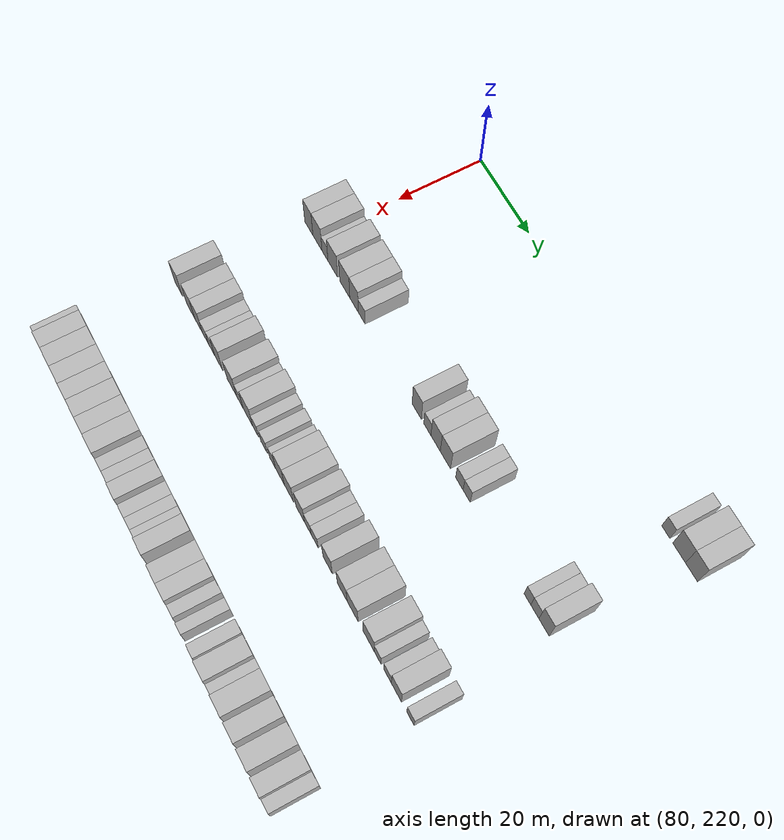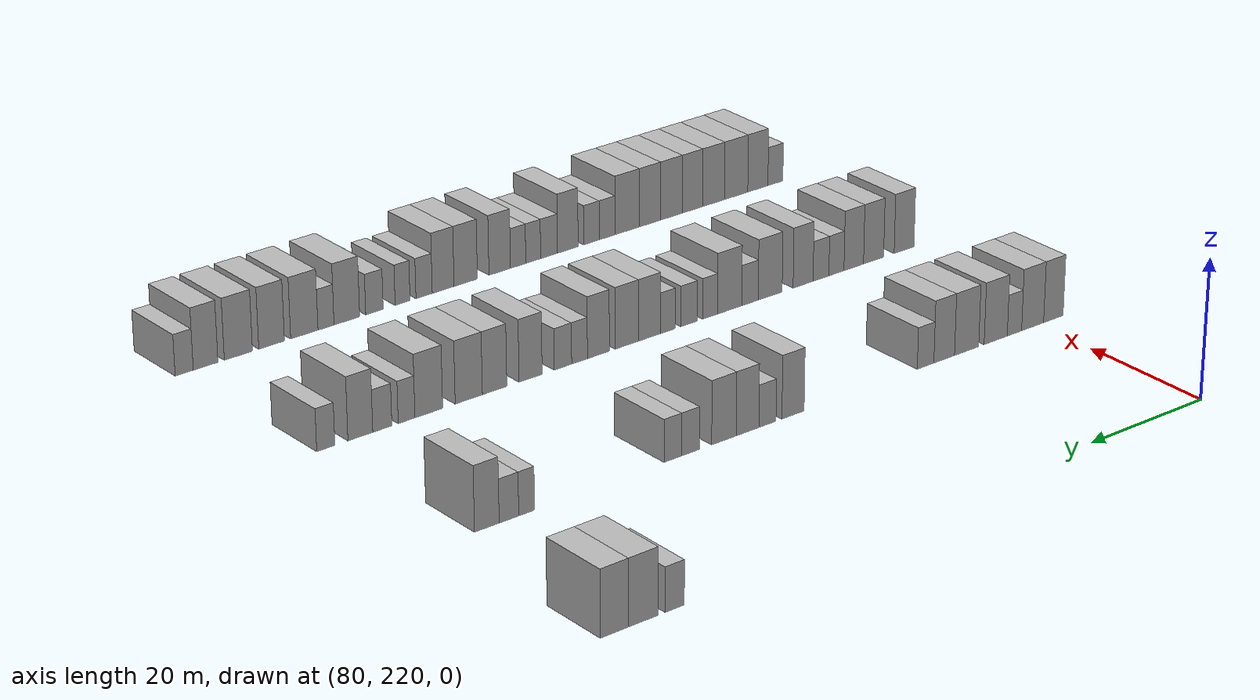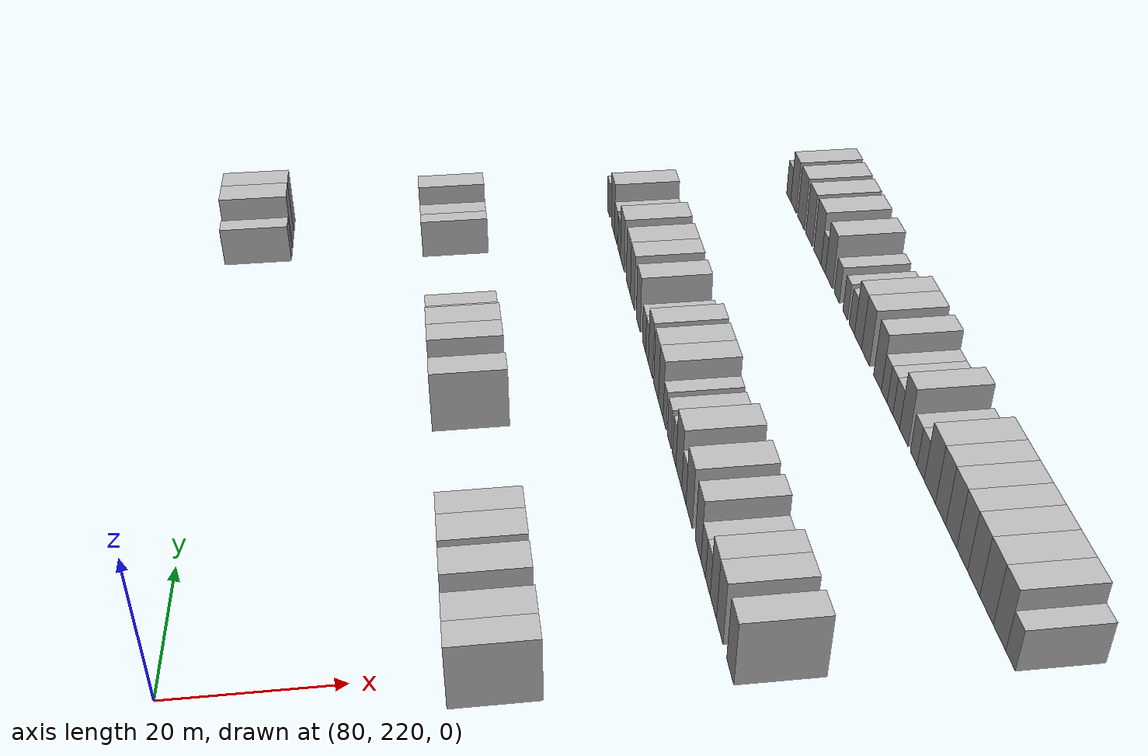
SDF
<sdf version="1.6">
 <world name="default">
  <model name="building_637">
   <static>1</static>
   <pose>85.0000 308.1836 0 0.000000 0.000000 0.000000</pose>
   <link name="link">
    <pose>0 0 3.00 0 0 0</pose>
    <collision name="collision"><geometry><box><size>10.0000 2.8824 6.0000</size></box></geometry></collision>
    <visual name="visual">
     <cast_shadows>0</cast_shadows>
     <geometry><box><size>10.0000 2.8824 6.0000</size></box></geometry>
     <material>
      <script>
       <uri>model://HANNAS_wall/materials/scripts</uri>
       <uri>model://HANNAS_wall/materials/textures</uri>
       <name>vrc/HANNAS_wall</name>
      </script>
     </material>
    </visual>
   </link>
  </model>
  <model name="building_638">
   <static>1</static>
   <pose>85.0000 312.8430 0 0.000000 0.000000 0.000000</pose>
   <link name="link">
    <pose>0 0 4.50 0 0 0</pose>
    <collision name="collision"><geometry><box><size>10.0000 4.4364 9.0000</size></box></geometry></collision>
    <visual name="visual">
     <cast_shadows>0</cast_shadows>
     <geometry><box><size>10.0000 4.4364 9.0000</size></box></geometry>
     <material>
      <script>
       <uri>model://HANNAS_wall/materials/scripts</uri>
       <uri>model://HANNAS_wall/materials/textures</uri>
       <name>vrc/HANNAS_wall</name>
      </script>
     </material>
    </visual>
   </link>
  </model>
  <model name="building_639">
   <static>1</static>
   <pose>85.0000 317.1447 0 0.000000 0.000000 0.000000</pose>
   <link name="link">
    <pose>0 0 4.50 0 0 0</pose>
    <collision name="collision"><geometry><box><size>10.0000 4.1670 9.0000</size></box></geometry></collision>
    <visual name="visual">
     <cast_shadows>0</cast_shadows>
     <geometry><box><size>10.0000 4.1670 9.0000</size></box></geometry>
     <material>
      <script>
       <uri>model://HANNAS_wall/materials/scripts</uri>
       <uri>model://HANNAS_wall/materials/textures</uri>
       <name>vrc/HANNAS_wall</name>
      </script>
     </material>
    </visual>
   </link>
  </model>
  <model name="building_849">
   <static>1</static>
   <pose>115.0000 217.1900 0 0.000000 0.000000 0.000000</pose>
   <link name="link">
    <pose>0 0 4.50 0 0 0</pose>
    <collision name="collision"><geometry><box><size>10.0000 3.6841 9.0000</size></box></geometry></collision>
    <visual name="visual">
     <cast_shadows>0</cast_shadows>
     <geometry><box><size>10.0000 3.6841 9.0000</size></box></geometry>
     <material>
      <script>
       <uri>model://HANNAS_wall/materials/scripts</uri>
       <uri>model://HANNAS_wall/materials/textures</uri>
       <name>vrc/HANNAS_wall</name>
      </script>
     </material>
    </visual>
   </link>
  </model>
  <model name="building_850">
   <static>1</static>
   <pose>115.0000 221.0914 0 0.000000 0.000000 0.000000</pose>
   <link name="link">
    <pose>0 0 4.50 0 0 0</pose>
    <collision name="collision"><geometry><box><size>10.0000 4.1188 9.0000</size></box></geometry></collision>
    <visual name="visual">
     <cast_shadows>0</cast_shadows>
     <geometry><box><size>10.0000 4.1188 9.0000</size></box></geometry>
     <material>
      <script>
       <uri>model://HANNAS_wall/materials/scripts</uri>
       <uri>model://HANNAS_wall/materials/textures</uri>
       <name>vrc/HANNAS_wall</name>
      </script>
     </material>
    </visual>
   </link>
  </model>
  <model name="building_851">
   <static>1</static>
   <pose>115.0000 224.4838 0 0.000000 0.000000 0.000000</pose>
   <link name="link">
    <pose>0 0 3.00 0 0 0</pose>
    <collision name="collision"><geometry><box><size>10.0000 2.6661 6.0000</size></box></geometry></collision>
    <visual name="visual">
     <cast_shadows>0</cast_shadows>
     <geometry><box><size>10.0000 2.6661 6.0000</size></box></geometry>
     <material>
      <script>
       <uri>model://HANNAS_wall/materials/scripts</uri>
       <uri>model://HANNAS_wall/materials/textures</uri>
       <name>vrc/HANNAS_wall</name>
      </script>
     </material>
    </visual>
   </link>
  </model>
  <model name="building_852">
   <static>1</static>
   <pose>115.0000 227.9527 0 0.000000 0.000000 0.000000</pose>
   <link name="link">
    <pose>0 0 4.50 0 0 0</pose>
    <collision name="collision"><geometry><box><size>10.0000 4.2716 9.0000</size></box></geometry></collision>
    <visual name="visual">
     <cast_shadows>0</cast_shadows>
     <geometry><box><size>10.0000 4.2716 9.0000</size></box></geometry>
     <material>
      <script>
       <uri>model://HANNAS_wall/materials/scripts</uri>
       <uri>model://HANNAS_wall/materials/textures</uri>
       <name>vrc/HANNAS_wall</name>
      </script>
     </material>
    </visual>
   </link>
  </model>
  <model name="building_853">
   <static>1</static>
   <pose>115.0000 233.2897 0 0.000000 0.000000 0.000000</pose>
   <link name="link">
    <pose>0 0 4.50 0 0 0</pose>
    <collision name="collision"><geometry><box><size>10.0000 4.4025 9.0000</size></box></geometry></collision>
    <visual name="visual">
     <cast_shadows>0</cast_shadows>
     <geometry><box><size>10.0000 4.4025 9.0000</size></box></geometry>
     <material>
      <script>
       <uri>model://HANNAS_wall/materials/scripts</uri>
       <uri>model://HANNAS_wall/materials/textures</uri>
       <name>vrc/HANNAS_wall</name>
      </script>
     </material>
    </visual>
   </link>
  </model>
  <model name="building_854">
   <static>1</static>
   <pose>115.0000 237.3586 0 0.000000 0.000000 0.000000</pose>
   <link name="link">
    <pose>0 0 4.50 0 0 0</pose>
    <collision name="collision"><geometry><box><size>10.0000 3.7352 9.0000</size></box></geometry></collision>
    <visual name="visual">
     <cast_shadows>0</cast_shadows>
     <geometry><box><size>10.0000 3.7352 9.0000</size></box></geometry>
     <material>
      <script>
       <uri>model://HANNAS_wall/materials/scripts</uri>
       <uri>model://HANNAS_wall/materials/textures</uri>
       <name>vrc/HANNAS_wall</name>
      </script>
     </material>
    </visual>
   </link>
  </model>
  <model name="building_855">
   <static>1</static>
   <pose>115.0000 240.7136 0 0.000000 0.000000 0.000000</pose>
   <link name="link">
    <pose>0 0 3.00 0 0 0</pose>
    <collision name="collision"><geometry><box><size>10.0000 2.9749 6.0000</size></box></geometry></collision>
    <visual name="visual">
     <cast_shadows>0</cast_shadows>
     <geometry><box><size>10.0000 2.9749 6.0000</size></box></geometry>
     <material>
      <script>
       <uri>model://HANNAS_wall/materials/scripts</uri>
       <uri>model://HANNAS_wall/materials/textures</uri>
       <name>vrc/HANNAS_wall</name>
      </script>
     </material>
    </visual>
   </link>
  </model>
  <model name="building_856">
   <static>1</static>
   <pose>115.0000 263.8609 0 0.000000 0.000000 0.000000</pose>
   <link name="link">
    <pose>0 0 4.50 0 0 0</pose>
    <collision name="collision"><geometry><box><size>10.0000 3.7732 9.0000</size></box></geometry></collision>
    <visual name="visual">
     <cast_shadows>0</cast_shadows>
     <geometry><box><size>10.0000 3.7732 9.0000</size></box></geometry>
     <material>
      <script>
       <uri>model://HANNAS_wall/materials/scripts</uri>
       <uri>model://HANNAS_wall/materials/textures</uri>
       <name>vrc/HANNAS_wall</name>
      </script>
     </material>
    </visual>
   </link>
  </model>
  <model name="building_857">
   <static>1</static>
   <pose>115.0000 268.1906 0 0.000000 0.000000 0.000000</pose>
   <link name="link">
    <pose>0 0 3.00 0 0 0</pose>
    <collision name="collision"><geometry><box><size>10.0000 2.8861 6.0000</size></box></geometry></collision>
    <visual name="visual">
     <cast_shadows>0</cast_shadows>
     <geometry><box><size>10.0000 2.8861 6.0000</size></box></geometry>
     <material>
      <script>
       <uri>model://HANNAS_wall/materials/scripts</uri>
       <uri>model://HANNAS_wall/materials/textures</uri>
       <name>vrc/HANNAS_wall</name>
      </script>
     </material>
    </visual>
   </link>
  </model>
  <model name="building_858">
   <static>1</static>
   <pose>115.0000 271.5165 0 0.000000 0.000000 0.000000</pose>
   <link name="link">
    <pose>0 0 4.50 0 0 0</pose>
    <collision name="collision"><geometry><box><size>10.0000 3.7658 9.0000</size></box></geometry></collision>
    <visual name="visual">
     <cast_shadows>0</cast_shadows>
     <geometry><box><size>10.0000 3.7658 9.0000</size></box></geometry>
     <material>
      <script>
       <uri>model://HANNAS_wall/materials/scripts</uri>
       <uri>model://HANNAS_wall/materials/textures</uri>
       <name>vrc/HANNAS_wall</name>
      </script>
     </material>
    </visual>
   </link>
  </model>
  <model name="building_859">
   <static>1</static>
   <pose>115.0000 275.4353 0 0.000000 0.000000 0.000000</pose>
   <link name="link">
    <pose>0 0 4.50 0 0 0</pose>
    <collision name="collision"><geometry><box><size>10.0000 4.0717 9.0000</size></box></geometry></collision>
    <visual name="visual">
     <cast_shadows>0</cast_shadows>
     <geometry><box><size>10.0000 4.0717 9.0000</size></box></geometry>
     <material>
      <script>
       <uri>model://HANNAS_wall/materials/scripts</uri>
       <uri>model://HANNAS_wall/materials/textures</uri>
       <name>vrc/HANNAS_wall</name>
      </script>
     </material>
    </visual>
   </link>
  </model>
  <model name="building_860">
   <static>1</static>
   <pose>115.0000 280.9340 0 0.000000 0.000000 0.000000</pose>
   <link name="link">
    <pose>0 0 3.00 0 0 0</pose>
    <collision name="collision"><geometry><box><size>10.0000 2.9256 6.0000</size></box></geometry></collision>
    <visual name="visual">
     <cast_shadows>0</cast_shadows>
     <geometry><box><size>10.0000 2.9256 6.0000</size></box></geometry>
     <material>
      <script>
       <uri>model://HANNAS_wall/materials/scripts</uri>
       <uri>model://HANNAS_wall/materials/textures</uri>
       <name>vrc/HANNAS_wall</name>
      </script>
     </material>
    </visual>
   </link>
  </model>
  <model name="building_861">
   <static>1</static>
   <pose>115.0000 283.8155 0 0.000000 0.000000 0.000000</pose>
   <link name="link">
    <pose>0 0 3.00 0 0 0</pose>
    <collision name="collision"><geometry><box><size>10.0000 2.8373 6.0000</size></box></geometry></collision>
    <visual name="visual">
     <cast_shadows>0</cast_shadows>
     <geometry><box><size>10.0000 2.8373 6.0000</size></box></geometry>
     <material>
      <script>
       <uri>model://HANNAS_wall/materials/scripts</uri>
       <uri>model://HANNAS_wall/materials/textures</uri>
       <name>vrc/HANNAS_wall</name>
      </script>
     </material>
    </visual>
   </link>
  </model>
  <model name="building_862">
   <static>1</static>
   <pose>115.0000 306.8834 0 0.000000 0.000000 0.000000</pose>
   <link name="link">
    <pose>0 0 3.00 0 0 0</pose>
    <collision name="collision"><geometry><box><size>10.0000 2.4329 6.0000</size></box></geometry></collision>
    <visual name="visual">
     <cast_shadows>0</cast_shadows>
     <geometry><box><size>10.0000 2.4329 6.0000</size></box></geometry>
     <material>
      <script>
       <uri>model://HANNAS_wall/materials/scripts</uri>
       <uri>model://HANNAS_wall/materials/textures</uri>
       <name>vrc/HANNAS_wall</name>
      </script>
     </material>
    </visual>
   </link>
  </model>
  <model name="building_863">
   <static>1</static>
   <pose>115.0000 309.5892 0 0.000000 0.000000 0.000000</pose>
   <link name="link">
    <pose>0 0 3.00 0 0 0</pose>
    <collision name="collision"><geometry><box><size>10.0000 2.9786 6.0000</size></box></geometry></collision>
    <visual name="visual">
     <cast_shadows>0</cast_shadows>
     <geometry><box><size>10.0000 2.9786 6.0000</size></box></geometry>
     <material>
      <script>
       <uri>model://HANNAS_wall/materials/scripts</uri>
       <uri>model://HANNAS_wall/materials/textures</uri>
       <name>vrc/HANNAS_wall</name>
      </script>
     </material>
    </visual>
   </link>
  </model>
  <model name="building_864">
   <static>1</static>
   <pose>115.0000 312.9439 0 0.000000 0.000000 0.000000</pose>
   <link name="link">
    <pose>0 0 4.50 0 0 0</pose>
    <collision name="collision"><geometry><box><size>10.0000 3.7308 9.0000</size></box></geometry></collision>
    <visual name="visual">
     <cast_shadows>0</cast_shadows>
     <geometry><box><size>10.0000 3.7308 9.0000</size></box></geometry>
     <material>
      <script>
       <uri>model://HANNAS_wall/materials/scripts</uri>
       <uri>model://HANNAS_wall/materials/textures</uri>
       <name>vrc/HANNAS_wall</name>
      </script>
     </material>
    </visual>
   </link>
  </model>
  <model name="building_1064">
   <static>1</static>
   <pose>145.0000 217.0241 0 0.000000 0.000000 0.000000</pose>
   <link name="link">
    <pose>0 0 4.50 0 0 0</pose>
    <collision name="collision"><geometry><box><size>10.0000 3.7813 9.0000</size></box></geometry></collision>
    <visual name="visual">
     <cast_shadows>0</cast_shadows>
     <geometry><box><size>10.0000 3.7813 9.0000</size></box></geometry>
     <material>
      <script>
       <uri>model://HANNAS_wall/materials/scripts</uri>
       <uri>model://HANNAS_wall/materials/textures</uri>
       <name>vrc/HANNAS_wall</name>
      </script>
     </material>
    </visual>
   </link>
  </model>
  <model name="building_1065">
   <static>1</static>
   <pose>145.0000 222.8066 0 0.000000 0.000000 0.000000</pose>
   <link name="link">
    <pose>0 0 4.50 0 0 0</pose>
    <collision name="collision"><geometry><box><size>10.0000 3.7836 9.0000</size></box></geometry></collision>
    <visual name="visual">
     <cast_shadows>0</cast_shadows>
     <geometry><box><size>10.0000 3.7836 9.0000</size></box></geometry>
     <material>
      <script>
       <uri>model://HANNAS_wall/materials/scripts</uri>
       <uri>model://HANNAS_wall/materials/textures</uri>
       <name>vrc/HANNAS_wall</name>
      </script>
     </material>
    </visual>
   </link>
  </model>
  <model name="building_1066">
   <static>1</static>
   <pose>145.0000 226.5248 0 0.000000 0.000000 0.000000</pose>
   <link name="link">
    <pose>0 0 4.50 0 0 0</pose>
    <collision name="collision"><geometry><box><size>10.0000 3.6529 9.0000</size></box></geometry></collision>
    <visual name="visual">
     <cast_shadows>0</cast_shadows>
     <geometry><box><size>10.0000 3.6529 9.0000</size></box></geometry>
     <material>
      <script>
       <uri>model://HANNAS_wall/materials/scripts</uri>
       <uri>model://HANNAS_wall/materials/textures</uri>
       <name>vrc/HANNAS_wall</name>
      </script>
     </material>
    </visual>
   </link>
  </model>
  <model name="building_1067">
   <static>1</static>
   <pose>145.0000 229.7549 0 0.000000 0.000000 0.000000</pose>
   <link name="link">
    <pose>0 0 3.00 0 0 0</pose>
    <collision name="collision"><geometry><box><size>10.0000 2.8072 6.0000</size></box></geometry></collision>
    <visual name="visual">
     <cast_shadows>0</cast_shadows>
     <geometry><box><size>10.0000 2.8072 6.0000</size></box></geometry>
     <material>
      <script>
       <uri>model://HANNAS_wall/materials/scripts</uri>
       <uri>model://HANNAS_wall/materials/textures</uri>
       <name>vrc/HANNAS_wall</name>
      </script>
     </material>
    </visual>
   </link>
  </model>
  <model name="building_1068">
   <static>1</static>
   <pose>145.0000 232.6130 0 0.000000 0.000000 0.000000</pose>
   <link name="link">
    <pose>0 0 3.00 0 0 0</pose>
    <collision name="collision"><geometry><box><size>10.0000 2.9091 6.0000</size></box></geometry></collision>
    <visual name="visual">
     <cast_shadows>0</cast_shadows>
     <geometry><box><size>10.0000 2.9091 6.0000</size></box></geometry>
     <material>
      <script>
       <uri>model://HANNAS_wall/materials/scripts</uri>
       <uri>model://HANNAS_wall/materials/textures</uri>
       <name>vrc/HANNAS_wall</name>
      </script>
     </material>
    </visual>
   </link>
  </model>
  <model name="building_1069">
   <static>1</static>
   <pose>145.0000 235.8982 0 0.000000 0.000000 0.000000</pose>
   <link name="link">
    <pose>0 0 4.50 0 0 0</pose>
    <collision name="collision"><geometry><box><size>10.0000 3.6612 9.0000</size></box></geometry></collision>
    <visual name="visual">
     <cast_shadows>0</cast_shadows>
     <geometry><box><size>10.0000 3.6612 9.0000</size></box></geometry>
     <material>
      <script>
       <uri>model://HANNAS_wall/materials/scripts</uri>
       <uri>model://HANNAS_wall/materials/textures</uri>
       <name>vrc/HANNAS_wall</name>
      </script>
     </material>
    </visual>
   </link>
  </model>
  <model name="building_1070">
   <static>1</static>
   <pose>145.0000 241.8910 0 0.000000 0.000000 0.000000</pose>
   <link name="link">
    <pose>0 0 4.50 0 0 0</pose>
    <collision name="collision"><geometry><box><size>10.0000 4.3245 9.0000</size></box></geometry></collision>
    <visual name="visual">
     <cast_shadows>0</cast_shadows>
     <geometry><box><size>10.0000 4.3245 9.0000</size></box></geometry>
     <material>
      <script>
       <uri>model://HANNAS_wall/materials/scripts</uri>
       <uri>model://HANNAS_wall/materials/textures</uri>
       <name>vrc/HANNAS_wall</name>
      </script>
     </material>
    </visual>
   </link>
  </model>
  <model name="building_1071">
   <static>1</static>
   <pose>145.0000 245.5260 0 0.000000 0.000000 0.000000</pose>
   <link name="link">
    <pose>0 0 3.00 0 0 0</pose>
    <collision name="collision"><geometry><box><size>10.0000 2.9454 6.0000</size></box></geometry></collision>
    <visual name="visual">
     <cast_shadows>0</cast_shadows>
     <geometry><box><size>10.0000 2.9454 6.0000</size></box></geometry>
     <material>
      <script>
       <uri>model://HANNAS_wall/materials/scripts</uri>
       <uri>model://HANNAS_wall/materials/textures</uri>
       <name>vrc/HANNAS_wall</name>
      </script>
     </material>
    </visual>
   </link>
  </model>
  <model name="building_1072">
   <static>1</static>
   <pose>145.0000 249.1521 0 0.000000 0.000000 0.000000</pose>
   <link name="link">
    <pose>0 0 4.50 0 0 0</pose>
    <collision name="collision"><geometry><box><size>10.0000 4.3068 9.0000</size></box></geometry></collision>
    <visual name="visual">
     <cast_shadows>0</cast_shadows>
     <geometry><box><size>10.0000 4.3068 9.0000</size></box></geometry>
     <material>
      <script>
       <uri>model://HANNAS_wall/materials/scripts</uri>
       <uri>model://HANNAS_wall/materials/textures</uri>
       <name>vrc/HANNAS_wall</name>
      </script>
     </material>
    </visual>
   </link>
  </model>
  <model name="building_1073">
   <static>1</static>
   <pose>145.0000 252.6098 0 0.000000 0.000000 0.000000</pose>
   <link name="link">
    <pose>0 0 3.00 0 0 0</pose>
    <collision name="collision"><geometry><box><size>10.0000 2.6086 6.0000</size></box></geometry></collision>
    <visual name="visual">
     <cast_shadows>0</cast_shadows>
     <geometry><box><size>10.0000 2.6086 6.0000</size></box></geometry>
     <material>
      <script>
       <uri>model://HANNAS_wall/materials/scripts</uri>
       <uri>model://HANNAS_wall/materials/textures</uri>
       <name>vrc/HANNAS_wall</name>
      </script>
     </material>
    </visual>
   </link>
  </model>
  <model name="building_1074">
   <static>1</static>
   <pose>145.0000 256.3312 0 0.000000 0.000000 0.000000</pose>
   <link name="link">
    <pose>0 0 3.00 0 0 0</pose>
    <collision name="collision"><geometry><box><size>10.0000 2.8342 6.0000</size></box></geometry></collision>
    <visual name="visual">
     <cast_shadows>0</cast_shadows>
     <geometry><box><size>10.0000 2.8342 6.0000</size></box></geometry>
     <material>
      <script>
       <uri>model://HANNAS_wall/materials/scripts</uri>
       <uri>model://HANNAS_wall/materials/textures</uri>
       <name>vrc/HANNAS_wall</name>
      </script>
     </material>
    </visual>
   </link>
  </model>
  <model name="building_1075">
   <static>1</static>
   <pose>145.0000 259.9956 0 0.000000 0.000000 0.000000</pose>
   <link name="link">
    <pose>0 0 3.00 0 0 0</pose>
    <collision name="collision"><geometry><box><size>10.0000 2.4946 6.0000</size></box></geometry></collision>
    <visual name="visual">
     <cast_shadows>0</cast_shadows>
     <geometry><box><size>10.0000 2.4946 6.0000</size></box></geometry>
     <material>
      <script>
       <uri>model://HANNAS_wall/materials/scripts</uri>
       <uri>model://HANNAS_wall/materials/textures</uri>
       <name>vrc/HANNAS_wall</name>
      </script>
     </material>
    </visual>
   </link>
  </model>
  <model name="building_1076">
   <static>1</static>
   <pose>145.0000 263.1510 0 0.000000 0.000000 0.000000</pose>
   <link name="link">
    <pose>0 0 4.50 0 0 0</pose>
    <collision name="collision"><geometry><box><size>10.0000 3.8164 9.0000</size></box></geometry></collision>
    <visual name="visual">
     <cast_shadows>0</cast_shadows>
     <geometry><box><size>10.0000 3.8164 9.0000</size></box></geometry>
     <material>
      <script>
       <uri>model://HANNAS_wall/materials/scripts</uri>
       <uri>model://HANNAS_wall/materials/textures</uri>
       <name>vrc/HANNAS_wall</name>
      </script>
     </material>
    </visual>
   </link>
  </model>
  <model name="building_1077">
   <static>1</static>
   <pose>145.0000 267.0627 0 0.000000 0.000000 0.000000</pose>
   <link name="link">
    <pose>0 0 4.50 0 0 0</pose>
    <collision name="collision"><geometry><box><size>10.0000 4.0069 9.0000</size></box></geometry></collision>
    <visual name="visual">
     <cast_shadows>0</cast_shadows>
     <geometry><box><size>10.0000 4.0069 9.0000</size></box></geometry>
     <material>
      <script>
       <uri>model://HANNAS_wall/materials/scripts</uri>
       <uri>model://HANNAS_wall/materials/textures</uri>
       <name>vrc/HANNAS_wall</name>
      </script>
     </material>
    </visual>
   </link>
  </model>
  <model name="building_1078">
   <static>1</static>
   <pose>145.0000 271.9260 0 0.000000 0.000000 0.000000</pose>
   <link name="link">
    <pose>0 0 4.50 0 0 0</pose>
    <collision name="collision"><geometry><box><size>10.0000 3.7196 9.0000</size></box></geometry></collision>
    <visual name="visual">
     <cast_shadows>0</cast_shadows>
     <geometry><box><size>10.0000 3.7196 9.0000</size></box></geometry>
     <material>
      <script>
       <uri>model://HANNAS_wall/materials/scripts</uri>
       <uri>model://HANNAS_wall/materials/textures</uri>
       <name>vrc/HANNAS_wall</name>
      </script>
     </material>
    </visual>
   </link>
  </model>
  <model name="building_1079">
   <static>1</static>
   <pose>145.0000 275.1103 0 0.000000 0.000000 0.000000</pose>
   <link name="link">
    <pose>0 0 3.00 0 0 0</pose>
    <collision name="collision"><geometry><box><size>10.0000 2.6491 6.0000</size></box></geometry></collision>
    <visual name="visual">
     <cast_shadows>0</cast_shadows>
     <geometry><box><size>10.0000 2.6491 6.0000</size></box></geometry>
     <material>
      <script>
       <uri>model://HANNAS_wall/materials/scripts</uri>
       <uri>model://HANNAS_wall/materials/textures</uri>
       <name>vrc/HANNAS_wall</name>
      </script>
     </material>
    </visual>
   </link>
  </model>
  <model name="building_1080">
   <static>1</static>
   <pose>145.0000 277.8964 0 0.000000 0.000000 0.000000</pose>
   <link name="link">
    <pose>0 0 3.00 0 0 0</pose>
    <collision name="collision"><geometry><box><size>10.0000 2.9231 6.0000</size></box></geometry></collision>
    <visual name="visual">
     <cast_shadows>0</cast_shadows>
     <geometry><box><size>10.0000 2.9231 6.0000</size></box></geometry>
     <material>
      <script>
       <uri>model://HANNAS_wall/materials/scripts</uri>
       <uri>model://HANNAS_wall/materials/textures</uri>
       <name>vrc/HANNAS_wall</name>
      </script>
     </material>
    </visual>
   </link>
  </model>
  <model name="building_1081">
   <static>1</static>
   <pose>145.0000 283.2603 0 0.000000 0.000000 0.000000</pose>
   <link name="link">
    <pose>0 0 4.50 0 0 0</pose>
    <collision name="collision"><geometry><box><size>10.0000 3.8047 9.0000</size></box></geometry></collision>
    <visual name="visual">
     <cast_shadows>0</cast_shadows>
     <geometry><box><size>10.0000 3.8047 9.0000</size></box></geometry>
     <material>
      <script>
       <uri>model://HANNAS_wall/materials/scripts</uri>
       <uri>model://HANNAS_wall/materials/textures</uri>
       <name>vrc/HANNAS_wall</name>
      </script>
     </material>
    </visual>
   </link>
  </model>
  <model name="building_1082">
   <static>1</static>
   <pose>145.0000 289.1527 0 0.000000 0.000000 0.000000</pose>
   <link name="link">
    <pose>0 0 4.50 0 0 0</pose>
    <collision name="collision"><geometry><box><size>10.0000 3.9801 9.0000</size></box></geometry></collision>
    <visual name="visual">
     <cast_shadows>0</cast_shadows>
     <geometry><box><size>10.0000 3.9801 9.0000</size></box></geometry>
     <material>
      <script>
       <uri>model://HANNAS_wall/materials/scripts</uri>
       <uri>model://HANNAS_wall/materials/textures</uri>
       <name>vrc/HANNAS_wall</name>
      </script>
     </material>
    </visual>
   </link>
  </model>
  <model name="building_1083">
   <static>1</static>
   <pose>145.0000 293.3345 0 0.000000 0.000000 0.000000</pose>
   <link name="link">
    <pose>0 0 4.50 0 0 0</pose>
    <collision name="collision"><geometry><box><size>10.0000 4.3834 9.0000</size></box></geometry></collision>
    <visual name="visual">
     <cast_shadows>0</cast_shadows>
     <geometry><box><size>10.0000 4.3834 9.0000</size></box></geometry>
     <material>
      <script>
       <uri>model://HANNAS_wall/materials/scripts</uri>
       <uri>model://HANNAS_wall/materials/textures</uri>
       <name>vrc/HANNAS_wall</name>
      </script>
     </material>
    </visual>
   </link>
  </model>
  <model name="building_1084">
   <static>1</static>
   <pose>145.0000 299.7274 0 0.000000 0.000000 0.000000</pose>
   <link name="link">
    <pose>0 0 4.50 0 0 0</pose>
    <collision name="collision"><geometry><box><size>10.0000 4.4024 9.0000</size></box></geometry></collision>
    <visual name="visual">
     <cast_shadows>0</cast_shadows>
     <geometry><box><size>10.0000 4.4024 9.0000</size></box></geometry>
     <material>
      <script>
       <uri>model://HANNAS_wall/materials/scripts</uri>
       <uri>model://HANNAS_wall/materials/textures</uri>
       <name>vrc/HANNAS_wall</name>
      </script>
     </material>
    </visual>
   </link>
  </model>
  <model name="building_1085">
   <static>1</static>
   <pose>145.0000 303.2469 0 0.000000 0.000000 0.000000</pose>
   <link name="link">
    <pose>0 0 3.00 0 0 0</pose>
    <collision name="collision"><geometry><box><size>10.0000 2.6367 6.0000</size></box></geometry></collision>
    <visual name="visual">
     <cast_shadows>0</cast_shadows>
     <geometry><box><size>10.0000 2.6367 6.0000</size></box></geometry>
     <material>
      <script>
       <uri>model://HANNAS_wall/materials/scripts</uri>
       <uri>model://HANNAS_wall/materials/textures</uri>
       <name>vrc/HANNAS_wall</name>
      </script>
     </material>
    </visual>
   </link>
  </model>
  <model name="building_1086">
   <static>1</static>
   <pose>145.0000 307.0524 0 0.000000 0.000000 0.000000</pose>
   <link name="link">
    <pose>0 0 3.00 0 0 0</pose>
    <collision name="collision"><geometry><box><size>10.0000 2.9744 6.0000</size></box></geometry></collision>
    <visual name="visual">
     <cast_shadows>0</cast_shadows>
     <geometry><box><size>10.0000 2.9744 6.0000</size></box></geometry>
     <material>
      <script>
       <uri>model://HANNAS_wall/materials/scripts</uri>
       <uri>model://HANNAS_wall/materials/textures</uri>
       <name>vrc/HANNAS_wall</name>
      </script>
     </material>
    </visual>
   </link>
  </model>
  <model name="building_1087">
   <static>1</static>
   <pose>145.0000 310.4643 0 0.000000 0.000000 0.000000</pose>
   <link name="link">
    <pose>0 0 4.50 0 0 0</pose>
    <collision name="collision"><geometry><box><size>10.0000 3.8494 9.0000</size></box></geometry></collision>
    <visual name="visual">
     <cast_shadows>0</cast_shadows>
     <geometry><box><size>10.0000 3.8494 9.0000</size></box></geometry>
     <material>
      <script>
       <uri>model://HANNAS_wall/materials/scripts</uri>
       <uri>model://HANNAS_wall/materials/textures</uri>
       <name>vrc/HANNAS_wall</name>
      </script>
     </material>
    </visual>
   </link>
  </model>
  <model name="building_1088">
   <static>1</static>
   <pose>145.0000 315.7819 0 0.000000 0.000000 0.000000</pose>
   <link name="link">
    <pose>0 0 3.00 0 0 0</pose>
    <collision name="collision"><geometry><box><size>10.0000 2.7859 6.0000</size></box></geometry></collision>
    <visual name="visual">
     <cast_shadows>0</cast_shadows>
     <geometry><box><size>10.0000 2.7859 6.0000</size></box></geometry>
     <material>
      <script>
       <uri>model://HANNAS_wall/materials/scripts</uri>
       <uri>model://HANNAS_wall/materials/textures</uri>
       <name>vrc/HANNAS_wall</name>
      </script>
     </material>
    </visual>
   </link>
  </model>
  <model name="building_1298">
   <static>1</static>
   <pose>175.0000 215.0484 0 0.000000 0.000000 0.000000</pose>
   <link name="link">
    <pose>0 0 3.00 0 0 0</pose>
    <collision name="collision"><geometry><box><size>10.0000 2.8907 6.0000</size></box></geometry></collision>
    <visual name="visual">
     <cast_shadows>0</cast_shadows>
     <geometry><box><size>10.0000 2.8907 6.0000</size></box></geometry>
     <material>
      <script>
       <uri>model://HANNAS_wall/materials/scripts</uri>
       <uri>model://HANNAS_wall/materials/textures</uri>
       <name>vrc/HANNAS_wall</name>
      </script>
     </material>
    </visual>
   </link>
  </model>
  <model name="building_1299">
   <static>1</static>
   <pose>175.0000 218.4317 0 0.000000 0.000000 0.000000</pose>
   <link name="link">
    <pose>0 0 4.50 0 0 0</pose>
    <collision name="collision"><geometry><box><size>10.0000 3.8757 9.0000</size></box></geometry></collision>
    <visual name="visual">
     <cast_shadows>0</cast_shadows>
     <geometry><box><size>10.0000 3.8757 9.0000</size></box></geometry>
     <material>
      <script>
       <uri>model://HANNAS_wall/materials/scripts</uri>
       <uri>model://HANNAS_wall/materials/textures</uri>
       <name>vrc/HANNAS_wall</name>
      </script>
     </material>
    </visual>
   </link>
  </model>
  <model name="building_1300">
   <static>1</static>
   <pose>175.0000 222.5803 0 0.000000 0.000000 0.000000</pose>
   <link name="link">
    <pose>0 0 4.50 0 0 0</pose>
    <collision name="collision"><geometry><box><size>10.0000 4.4216 9.0000</size></box></geometry></collision>
    <visual name="visual">
     <cast_shadows>0</cast_shadows>
     <geometry><box><size>10.0000 4.4216 9.0000</size></box></geometry>
     <material>
      <script>
       <uri>model://HANNAS_wall/materials/scripts</uri>
       <uri>model://HANNAS_wall/materials/textures</uri>
       <name>vrc/HANNAS_wall</name>
      </script>
     </material>
    </visual>
   </link>
  </model>
  <model name="building_1301">
   <static>1</static>
   <pose>175.0000 226.8608 0 0.000000 0.000000 0.000000</pose>
   <link name="link">
    <pose>0 0 4.50 0 0 0</pose>
    <collision name="collision"><geometry><box><size>10.0000 4.1394 9.0000</size></box></geometry></collision>
    <visual name="visual">
     <cast_shadows>0</cast_shadows>
     <geometry><box><size>10.0000 4.1394 9.0000</size></box></geometry>
     <material>
      <script>
       <uri>model://HANNAS_wall/materials/scripts</uri>
       <uri>model://HANNAS_wall/materials/textures</uri>
       <name>vrc/HANNAS_wall</name>
      </script>
     </material>
    </visual>
   </link>
  </model>
  <model name="building_1302">
   <static>1</static>
   <pose>175.0000 230.8344 0 0.000000 0.000000 0.000000</pose>
   <link name="link">
    <pose>0 0 4.50 0 0 0</pose>
    <collision name="collision"><geometry><box><size>10.0000 3.8077 9.0000</size></box></geometry></collision>
    <visual name="visual">
     <cast_shadows>0</cast_shadows>
     <geometry><box><size>10.0000 3.8077 9.0000</size></box></geometry>
     <material>
      <script>
       <uri>model://HANNAS_wall/materials/scripts</uri>
       <uri>model://HANNAS_wall/materials/textures</uri>
       <name>vrc/HANNAS_wall</name>
      </script>
     </material>
    </visual>
   </link>
  </model>
  <model name="building_1303">
   <static>1</static>
   <pose>175.0000 234.7618 0 0.000000 0.000000 0.000000</pose>
   <link name="link">
    <pose>0 0 4.50 0 0 0</pose>
    <collision name="collision"><geometry><box><size>10.0000 4.0471 9.0000</size></box></geometry></collision>
    <visual name="visual">
     <cast_shadows>0</cast_shadows>
     <geometry><box><size>10.0000 4.0471 9.0000</size></box></geometry>
     <material>
      <script>
       <uri>model://HANNAS_wall/materials/scripts</uri>
       <uri>model://HANNAS_wall/materials/textures</uri>
       <name>vrc/HANNAS_wall</name>
      </script>
     </material>
    </visual>
   </link>
  </model>
  <model name="building_1304">
   <static>1</static>
   <pose>175.0000 238.7296 0 0.000000 0.000000 0.000000</pose>
   <link name="link">
    <pose>0 0 4.50 0 0 0</pose>
    <collision name="collision"><geometry><box><size>10.0000 3.8886 9.0000</size></box></geometry></collision>
    <visual name="visual">
     <cast_shadows>0</cast_shadows>
     <geometry><box><size>10.0000 3.8886 9.0000</size></box></geometry>
     <material>
      <script>
       <uri>model://HANNAS_wall/materials/scripts</uri>
       <uri>model://HANNAS_wall/materials/textures</uri>
       <name>vrc/HANNAS_wall</name>
      </script>
     </material>
    </visual>
   </link>
  </model>
  <model name="building_1305">
   <static>1</static>
   <pose>175.0000 242.8872 0 0.000000 0.000000 0.000000</pose>
   <link name="link">
    <pose>0 0 4.50 0 0 0</pose>
    <collision name="collision"><geometry><box><size>10.0000 4.4267 9.0000</size></box></geometry></collision>
    <visual name="visual">
     <cast_shadows>0</cast_shadows>
     <geometry><box><size>10.0000 4.4267 9.0000</size></box></geometry>
     <material>
      <script>
       <uri>model://HANNAS_wall/materials/scripts</uri>
       <uri>model://HANNAS_wall/materials/textures</uri>
       <name>vrc/HANNAS_wall</name>
      </script>
     </material>
    </visual>
   </link>
  </model>
  <model name="building_1306">
   <static>1</static>
   <pose>175.0000 246.5369 0 0.000000 0.000000 0.000000</pose>
   <link name="link">
    <pose>0 0 3.00 0 0 0</pose>
    <collision name="collision"><geometry><box><size>10.0000 2.8727 6.0000</size></box></geometry></collision>
    <visual name="visual">
     <cast_shadows>0</cast_shadows>
     <geometry><box><size>10.0000 2.8727 6.0000</size></box></geometry>
     <material>
      <script>
       <uri>model://HANNAS_wall/materials/scripts</uri>
       <uri>model://HANNAS_wall/materials/textures</uri>
       <name>vrc/HANNAS_wall</name>
      </script>
     </material>
    </visual>
   </link>
  </model>
  <model name="building_1307">
   <static>1</static>
   <pose>175.0000 249.3861 0 0.000000 0.000000 0.000000</pose>
   <link name="link">
    <pose>0 0 3.00 0 0 0</pose>
    <collision name="collision"><geometry><box><size>10.0000 2.8257 6.0000</size></box></geometry></collision>
    <visual name="visual">
     <cast_shadows>0</cast_shadows>
     <geometry><box><size>10.0000 2.8257 6.0000</size></box></geometry>
     <material>
      <script>
       <uri>model://HANNAS_wall/materials/scripts</uri>
       <uri>model://HANNAS_wall/materials/textures</uri>
       <name>vrc/HANNAS_wall</name>
      </script>
     </material>
    </visual>
   </link>
  </model>
  <model name="building_1308">
   <static>1</static>
   <pose>175.0000 253.6394 0 0.000000 0.000000 0.000000</pose>
   <link name="link">
    <pose>0 0 4.50 0 0 0</pose>
    <collision name="collision"><geometry><box><size>10.0000 3.6809 9.0000</size></box></geometry></collision>
    <visual name="visual">
     <cast_shadows>0</cast_shadows>
     <geometry><box><size>10.0000 3.6809 9.0000</size></box></geometry>
     <material>
      <script>
       <uri>model://HANNAS_wall/materials/scripts</uri>
       <uri>model://HANNAS_wall/materials/textures</uri>
       <name>vrc/HANNAS_wall</name>
      </script>
     </material>
    </visual>
   </link>
  </model>
  <model name="building_1309">
   <static>1</static>
   <pose>175.0000 256.9759 0 0.000000 0.000000 0.000000</pose>
   <link name="link">
    <pose>0 0 3.00 0 0 0</pose>
    <collision name="collision"><geometry><box><size>10.0000 2.9920 6.0000</size></box></geometry></collision>
    <visual name="visual">
     <cast_shadows>0</cast_shadows>
     <geometry><box><size>10.0000 2.9920 6.0000</size></box></geometry>
     <material>
      <script>
       <uri>model://HANNAS_wall/materials/scripts</uri>
       <uri>model://HANNAS_wall/materials/textures</uri>
       <name>vrc/HANNAS_wall</name>
      </script>
     </material>
    </visual>
   </link>
  </model>
  <model name="building_1310">
   <static>1</static>
   <pose>175.0000 259.7846 0 0.000000 0.000000 0.000000</pose>
   <link name="link">
    <pose>0 0 3.00 0 0 0</pose>
    <collision name="collision"><geometry><box><size>10.0000 2.6253 6.0000</size></box></geometry></collision>
    <visual name="visual">
     <cast_shadows>0</cast_shadows>
     <geometry><box><size>10.0000 2.6253 6.0000</size></box></geometry>
     <material>
      <script>
       <uri>model://HANNAS_wall/materials/scripts</uri>
       <uri>model://HANNAS_wall/materials/textures</uri>
       <name>vrc/HANNAS_wall</name>
      </script>
     </material>
    </visual>
   </link>
  </model>
  <model name="building_1311">
   <static>1</static>
   <pose>175.0000 262.4375 0 0.000000 0.000000 0.000000</pose>
   <link name="link">
    <pose>0 0 3.00 0 0 0</pose>
    <collision name="collision"><geometry><box><size>10.0000 2.6805 6.0000</size></box></geometry></collision>
    <visual name="visual">
     <cast_shadows>0</cast_shadows>
     <geometry><box><size>10.0000 2.6805 6.0000</size></box></geometry>
     <material>
      <script>
       <uri>model://HANNAS_wall/materials/scripts</uri>
       <uri>model://HANNAS_wall/materials/textures</uri>
       <name>vrc/HANNAS_wall</name>
      </script>
     </material>
    </visual>
   </link>
  </model>
  <model name="building_1312">
   <static>1</static>
   <pose>175.0000 265.6509 0 0.000000 0.000000 0.000000</pose>
   <link name="link">
    <pose>0 0 4.50 0 0 0</pose>
    <collision name="collision"><geometry><box><size>10.0000 3.7463 9.0000</size></box></geometry></collision>
    <visual name="visual">
     <cast_shadows>0</cast_shadows>
     <geometry><box><size>10.0000 3.7463 9.0000</size></box></geometry>
     <material>
      <script>
       <uri>model://HANNAS_wall/materials/scripts</uri>
       <uri>model://HANNAS_wall/materials/textures</uri>
       <name>vrc/HANNAS_wall</name>
      </script>
     </material>
    </visual>
   </link>
  </model>
  <model name="building_1313">
   <static>1</static>
   <pose>175.0000 271.5293 0 0.000000 0.000000 0.000000</pose>
   <link name="link">
    <pose>0 0 4.50 0 0 0</pose>
    <collision name="collision"><geometry><box><size>10.0000 4.0104 9.0000</size></box></geometry></collision>
    <visual name="visual">
     <cast_shadows>0</cast_shadows>
     <geometry><box><size>10.0000 4.0104 9.0000</size></box></geometry>
     <material>
      <script>
       <uri>model://HANNAS_wall/materials/scripts</uri>
       <uri>model://HANNAS_wall/materials/textures</uri>
       <name>vrc/HANNAS_wall</name>
      </script>
     </material>
    </visual>
   </link>
  </model>
  <model name="building_1314">
   <static>1</static>
   <pose>175.0000 275.3951 0 0.000000 0.000000 0.000000</pose>
   <link name="link">
    <pose>0 0 4.50 0 0 0</pose>
    <collision name="collision"><geometry><box><size>10.0000 3.7213 9.0000</size></box></geometry></collision>
    <visual name="visual">
     <cast_shadows>0</cast_shadows>
     <geometry><box><size>10.0000 3.7213 9.0000</size></box></geometry>
     <material>
      <script>
       <uri>model://HANNAS_wall/materials/scripts</uri>
       <uri>model://HANNAS_wall/materials/textures</uri>
       <name>vrc/HANNAS_wall</name>
      </script>
     </material>
    </visual>
   </link>
  </model>
  <model name="building_1315">
   <static>1</static>
   <pose>175.0000 278.6362 0 0.000000 0.000000 0.000000</pose>
   <link name="link">
    <pose>0 0 3.00 0 0 0</pose>
    <collision name="collision"><geometry><box><size>10.0000 2.7609 6.0000</size></box></geometry></collision>
    <visual name="visual">
     <cast_shadows>0</cast_shadows>
     <geometry><box><size>10.0000 2.7609 6.0000</size></box></geometry>
     <material>
      <script>
       <uri>model://HANNAS_wall/materials/scripts</uri>
       <uri>model://HANNAS_wall/materials/textures</uri>
       <name>vrc/HANNAS_wall</name>
      </script>
     </material>
    </visual>
   </link>
  </model>
  <model name="building_1316">
   <static>1</static>
   <pose>175.0000 282.2682 0 0.000000 0.000000 0.000000</pose>
   <link name="link">
    <pose>0 0 3.00 0 0 0</pose>
    <collision name="collision"><geometry><box><size>10.0000 2.5031 6.0000</size></box></geometry></collision>
    <visual name="visual">
     <cast_shadows>0</cast_shadows>
     <geometry><box><size>10.0000 2.5031 6.0000</size></box></geometry>
     <material>
      <script>
       <uri>model://HANNAS_wall/materials/scripts</uri>
       <uri>model://HANNAS_wall/materials/textures</uri>
       <name>vrc/HANNAS_wall</name>
      </script>
     </material>
    </visual>
   </link>
  </model>
  <model name="building_1317">
   <static>1</static>
   <pose>175.0000 286.9687 0 0.000000 0.000000 0.000000</pose>
   <link name="link">
    <pose>0 0 3.00 0 0 0</pose>
    <collision name="collision"><geometry><box><size>10.0000 2.8978 6.0000</size></box></geometry></collision>
    <visual name="visual">
     <cast_shadows>0</cast_shadows>
     <geometry><box><size>10.0000 2.8978 6.0000</size></box></geometry>
     <material>
      <script>
       <uri>model://HANNAS_wall/materials/scripts</uri>
       <uri>model://HANNAS_wall/materials/textures</uri>
       <name>vrc/HANNAS_wall</name>
      </script>
     </material>
    </visual>
   </link>
  </model>
  <model name="building_1318">
   <static>1</static>
   <pose>175.0000 291.5269 0 0.000000 0.000000 0.000000</pose>
   <link name="link">
    <pose>0 0 4.50 0 0 0</pose>
    <collision name="collision"><geometry><box><size>10.0000 4.2187 9.0000</size></box></geometry></collision>
    <visual name="visual">
     <cast_shadows>0</cast_shadows>
     <geometry><box><size>10.0000 4.2187 9.0000</size></box></geometry>
     <material>
      <script>
       <uri>model://HANNAS_wall/materials/scripts</uri>
       <uri>model://HANNAS_wall/materials/textures</uri>
       <name>vrc/HANNAS_wall</name>
      </script>
     </material>
    </visual>
   </link>
  </model>
  <model name="building_1319">
   <static>1</static>
   <pose>175.0000 294.9480 0 0.000000 0.000000 0.000000</pose>
   <link name="link">
    <pose>0 0 3.00 0 0 0</pose>
    <collision name="collision"><geometry><box><size>10.0000 2.6234 6.0000</size></box></geometry></collision>
    <visual name="visual">
     <cast_shadows>0</cast_shadows>
     <geometry><box><size>10.0000 2.6234 6.0000</size></box></geometry>
     <material>
      <script>
       <uri>model://HANNAS_wall/materials/scripts</uri>
       <uri>model://HANNAS_wall/materials/textures</uri>
       <name>vrc/HANNAS_wall</name>
      </script>
     </material>
    </visual>
   </link>
  </model>
  <model name="building_1320">
   <static>1</static>
   <pose>175.0000 298.4724 0 0.000000 0.000000 0.000000</pose>
   <link name="link">
    <pose>0 0 4.50 0 0 0</pose>
    <collision name="collision"><geometry><box><size>10.0000 4.4255 9.0000</size></box></geometry></collision>
    <visual name="visual">
     <cast_shadows>0</cast_shadows>
     <geometry><box><size>10.0000 4.4255 9.0000</size></box></geometry>
     <material>
      <script>
       <uri>model://HANNAS_wall/materials/scripts</uri>
       <uri>model://HANNAS_wall/materials/textures</uri>
       <name>vrc/HANNAS_wall</name>
      </script>
     </material>
    </visual>
   </link>
  </model>
  <model name="building_1321">
   <static>1</static>
   <pose>175.0000 303.7445 0 0.000000 0.000000 0.000000</pose>
   <link name="link">
    <pose>0 0 4.50 0 0 0</pose>
    <collision name="collision"><geometry><box><size>10.0000 4.1189 9.0000</size></box></geometry></collision>
    <visual name="visual">
     <cast_shadows>0</cast_shadows>
     <geometry><box><size>10.0000 4.1189 9.0000</size></box></geometry>
     <material>
      <script>
       <uri>model://HANNAS_wall/materials/scripts</uri>
       <uri>model://HANNAS_wall/materials/textures</uri>
       <name>vrc/HANNAS_wall</name>
      </script>
     </material>
    </visual>
   </link>
  </model>
  <model name="building_1322">
   <static>1</static>
   <pose>175.0000 309.0319 0 0.000000 0.000000 0.000000</pose>
   <link name="link">
    <pose>0 0 4.50 0 0 0</pose>
    <collision name="collision"><geometry><box><size>10.0000 4.4559 9.0000</size></box></geometry></collision>
    <visual name="visual">
     <cast_shadows>0</cast_shadows>
     <geometry><box><size>10.0000 4.4559 9.0000</size></box></geometry>
     <material>
      <script>
       <uri>model://HANNAS_wall/materials/scripts</uri>
       <uri>model://HANNAS_wall/materials/textures</uri>
       <name>vrc/HANNAS_wall</name>
      </script>
     </material>
    </visual>
   </link>
  </model>
  <model name="building_1323">
   <static>1</static>
   <pose>175.0000 314.1914 0 0.000000 0.000000 0.000000</pose>
   <link name="link">
    <pose>0 0 4.50 0 0 0</pose>
    <collision name="collision"><geometry><box><size>10.0000 3.8632 9.0000</size></box></geometry></collision>
    <visual name="visual">
     <cast_shadows>0</cast_shadows>
     <geometry><box><size>10.0000 3.8632 9.0000</size></box></geometry>
     <material>
      <script>
       <uri>model://HANNAS_wall/materials/scripts</uri>
       <uri>model://HANNAS_wall/materials/textures</uri>
       <name>vrc/HANNAS_wall</name>
      </script>
     </material>
    </visual>
   </link>
  </model>
  <model name="building_1324">
   <static>1</static>
   <pose>175.0000 317.5299 0 0.000000 0.000000 0.000000</pose>
   <link name="link">
    <pose>0 0 3.00 0 0 0</pose>
    <collision name="collision"><geometry><box><size>10.0000 2.8137 6.0000</size></box></geometry></collision>
    <visual name="visual">
     <cast_shadows>0</cast_shadows>
     <geometry><box><size>10.0000 2.8137 6.0000</size></box></geometry>
     <material>
      <script>
       <uri>model://HANNAS_wall/materials/scripts</uri>
       <uri>model://HANNAS_wall/materials/textures</uri>
       <name>vrc/HANNAS_wall</name>
      </script>
     </material>
    </visual>
   </link>
  </model>
 </world>
</sdf>
